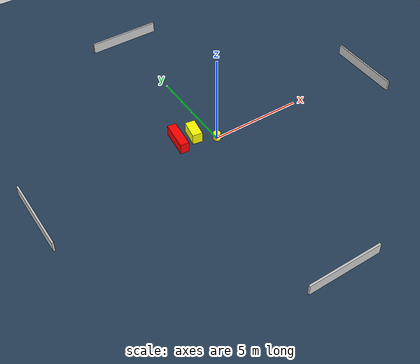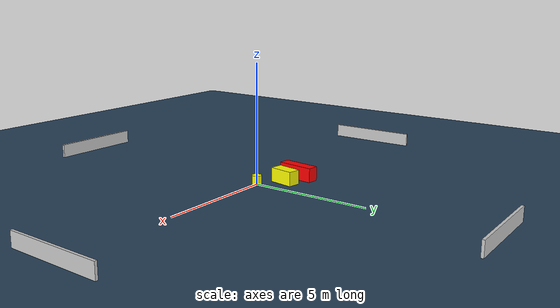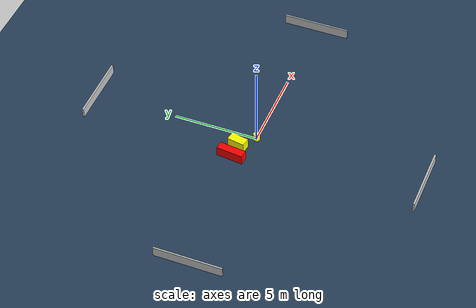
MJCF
<?xml version="1.0" ?>
<mujoco model="generated_environment">
  <option timestep="0.01" integrator="RK4" cone="elliptic"/>
  <default>
    <geom density="1"/>
  </default>
  <asset>
    <texture builtin="gradient" height="3072" name="skybox" rgb1="0.3 0.5 0.7" rgb2="0 0 0" type="skybox" width="512"/>
    <texture builtin="checker" height="300" name="groundplane" rgb1="0.2 0.3 0.4" rgb2="0.1 0.2 0.3" type="2d" width="300"/>
    <material name="groundplane" reflectance="0.2" texrepeat="5 5" texture="groundplane"/>
  </asset>
  <worldbody>
    <light dir="0 0 -1" directional="true" pos="0 0 1.5"/>
    <geom condim="3" friction="0.5 0.005 0.001" material="groundplane" name="floor" pos="0 0 0" size="0 0 0.05" type="plane"/>
    <body name="walls">
      <geom name="wall_1" condim="4" pos="-10.0 0.0 0.3" rgba="0.800000011920929 0.800000011920929 0.800000011920929 1.0" size="0.05 2.0 0.3" type="box"/>
      <geom name="wall_2" condim="4" pos="10.0 0.0 0.3" rgba="0.800000011920929 0.800000011920929 0.800000011920929 1.0" size="0.05 2.0 0.3" type="box"/>
      <geom name="wall_3" condim="4" pos="0.0 -10.0 0.3" rgba="0.800000011920929 0.800000011920929 0.800000011920929 1.0" size="2.0 0.05 0.3" type="box"/>
      <geom name="wall_4" condim="4" pos="0.0 10.0 0.3" rgba="0.800000011920929 0.800000011920929 0.800000011920929 1.0" size="2.0 0.05 0.3" type="box"/>
    </body>
    <body name="robot">
      <joint name="joint_x" type="slide" pos="0 0 0" axis="1 0 0"/>
      <joint name="joint_y" type="slide" pos="0 0 0" axis="0 1 0"/>
      <geom name="robot" type="cylinder" pos="0.0 0.0 0.2" size="0.2 0.2 0.0" mass="5.0" friction="1.0 0.005 0.0001" condim="4" rgba="1.0 1.0 0.0 1.0"/>
    </body>
    <body name="obstacle_1_movable">
      <geom name="obstacle_1_movable" condim="4" pos="-0.9089242872248507 0.7874988450386483 0.3" euler="0 0 260.35970869413217" friction="0.0 0.005 0.001" rgba="1.0 1.0 0.0 1.0" size="0.5206034575518643 0.2680260035751612 0.3" type="box" mass="0.1"/>
      <joint type="free"/>
    </body>
    <body name="obstacle_2_static">
      <geom name="obstacle_2_static" condim="4" pos="-1.8176383905931783 0.8311629773102971 0.3" euler="0 0 83.65809026956389" friction="0.0 0.005 0.001" rgba="1.0 0.0 0.0 1.0" size="0.7961675327315705 0.23781659318784287 0.3" type="box"/>
    </body>
  </worldbody>
  <actuator>
    <motor name="actuator_x" joint="joint_x" gear="1" ctrlrange="-1 1"/>
    <motor name="actuator_y" joint="joint_y" gear="1" ctrlrange="-1 1"/>
  </actuator>
</mujoco>
